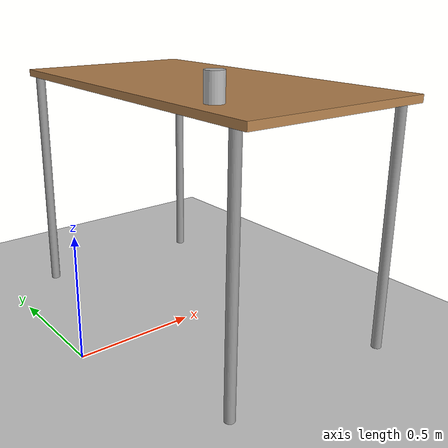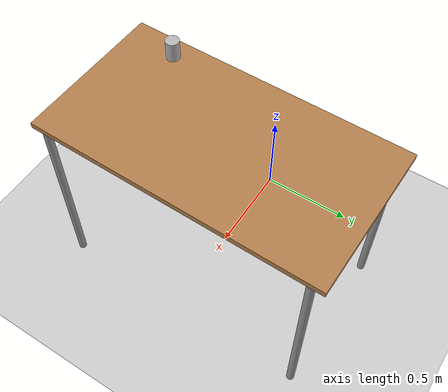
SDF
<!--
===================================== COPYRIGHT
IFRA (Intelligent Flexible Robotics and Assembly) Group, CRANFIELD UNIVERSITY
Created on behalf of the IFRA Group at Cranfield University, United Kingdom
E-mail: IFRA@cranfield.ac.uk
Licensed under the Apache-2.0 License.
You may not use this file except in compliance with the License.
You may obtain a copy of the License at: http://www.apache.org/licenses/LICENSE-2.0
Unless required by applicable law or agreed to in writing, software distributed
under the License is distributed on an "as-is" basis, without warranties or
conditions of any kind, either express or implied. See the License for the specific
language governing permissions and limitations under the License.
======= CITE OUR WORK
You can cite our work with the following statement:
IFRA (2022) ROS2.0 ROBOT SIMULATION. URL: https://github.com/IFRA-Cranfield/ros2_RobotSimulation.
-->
<sdf version="1.4">
 <world name="default">
  <include><uri>model://ground_plane</uri></include>
  <include><uri>model://sun</uri></include>
  <scene><shadows>0</shadows></scene>
  <plugin name="gazebo_ros_state" filename="libgazebo_ros_state.so">
   <ros>
    <namespace>/ros2_grasp</namespace>
    <argument>model_states:=model_states</argument>
    <argument>link_states:=link_states</argument>
   </ros>
   <update_rate>1.0</update_rate>
  </plugin>
  <plugin name="gazebo_ros_properties" filename="libgazebo_ros_properties.so">
   <ros><namespace>/ros2_grasp</namespace></ros>
  </plugin>
  <plugin name="gazebo_link_attacher" filename="libgazebo_link_attacher.so"/>
  <include><uri>model://table</uri><pose>0.601718 0.037076 0 0 0 -1.589304</pose></include>
  <include><uri>model://beer</uri><pose>0.3 -0.43 1.06 0 0 -1.684652</pose></include>
 </world>
</sdf>

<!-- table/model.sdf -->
<sdf version="1.5">
  <model name="table">
    <static>true</static>
    <link name="link">
      <collision name="surface">
        <pose>0 0 1.0 0 0 0</pose>
        <geometry>
          <box>
            <size>1.5 0.8 0.03</size>
          </box>
        </geometry>
        <surface>
          <friction>
            <ode>
              <mu>0.6</mu>
              <mu2>0.6</mu2>
            </ode>
          </friction>
        </surface>
      </collision>
      <visual name="visual1">
        <pose>0 0 1.0 0 0 0</pose>
        <geometry>
          <box>
            <size>1.5 0.8 0.03</size>
          </box>
        </geometry>
        <material>
          <script>
            <uri>model://media/materials/scripts/gazebo.material</uri>
            <name>Gazebo/Wood</name>
          </script>
        </material>
      </visual>
      <collision name="front_left_leg">
        <pose>0.68 0.38 0.5 0 0 0</pose>
        <geometry>
          <cylinder>
            <radius>0.02</radius>
            <length>1.0</length>
          </cylinder>
        </geometry>
      </collision>
      <visual name="front_left_leg">
        <pose>0.68 0.38 0.5 0 0 0</pose>
        <geometry>
          <cylinder>
            <radius>0.02</radius>
            <length>1.0</length>
          </cylinder>
        </geometry>
        <material>
          <script>
            <uri>model://media/materials/scripts/gazebo.material</uri>
            <name>Gazebo/Grey</name>
          </script>
        </material>
      </visual>
      <collision name="front_right_leg">
        <pose>0.68 -0.38 0.5 0 0 0</pose>
        <geometry>
          <cylinder>
            <radius>0.02</radius>
            <length>1.0</length>
          </cylinder>
        </geometry>
      </collision>
      <visual name="front_right_leg">
        <pose>0.68 -0.38 0.5 0 0 0</pose>
        <geometry>
          <cylinder>
            <radius>0.02</radius>
            <length>1.0</length>
          </cylinder>
        </geometry>
        <material>
          <script>
            <uri>model://media/materials/scripts/gazebo.material</uri>
            <name>Gazebo/Grey</name>
          </script>
        </material>
      </visual>
      <collision name="back_right_leg">
        <pose>-0.68 -0.38 0.5 0 0 0</pose>
        <geometry>
          <cylinder>
            <radius>0.02</radius>
            <length>1.0</length>
          </cylinder>
        </geometry>
      </collision>
      <visual name="back_right_leg">
        <pose>-0.68 -0.38 0.5 0 0 0</pose>
        <geometry>
          <cylinder>
            <radius>0.02</radius>
            <length>1.0</length>
          </cylinder>
        </geometry>
        <material>
          <script>
            <uri>model://media/materials/scripts/gazebo.material</uri>
            <name>Gazebo/Grey</name>
          </script>
        </material>
      </visual>
      <collision name="back_left_leg">
        <pose>-0.68 0.38 0.5 0 0 0</pose>
        <geometry>
          <cylinder>
            <radius>0.02</radius>
            <length>1.0</length>
          </cylinder>
        </geometry>
      </collision>
      <visual name="back_left_leg">
        <pose>-0.68 0.38 0.5 0 0 0</pose>
        <geometry>
          <cylinder>
            <radius>0.02</radius>
            <length>1.0</length>
          </cylinder>
        </geometry>
        <material>
          <script>
            <uri>model://media/materials/scripts/gazebo.material</uri>
            <name>Gazebo/Grey</name>
          </script>
        </material>
      </visual>
    </link>
  </model>
</sdf>

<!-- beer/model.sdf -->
<sdf version='1.4'>
  <model name="beer">
    <link name='link'>
      <pose>0 0 0 0 0 0</pose>
      <inertial>
        <mass>0.390</mass>
        <inertia>
          <ixx>0.00058</ixx>
          <ixy>0</ixy>
          <ixz>0</ixz>
          <iyy>0.00058</iyy>
          <iyz>0</iyz>
          <izz>0.00025</izz>
        </inertia>
      </inertial>
      <collision name='collision'>
        <geometry>
          <cylinder>
            <radius>0.03500</radius>
            <length>0.12000</length>
          </cylinder>
        </geometry>
      </collision>

      <visual name='visual'>
        <geometry>
          <cylinder>
            <radius>0.03500</radius>
            <length>0.12000</length>
          </cylinder>
        </geometry>

        <material>
          <script>
            <uri>model://beer/materials/scripts</uri>
            <uri>model://beer/materials/textures</uri>
            <name>Beer/Diffuse</name>
          </script>
        </material>
      </visual>
    </link>
  </model>
</sdf>
